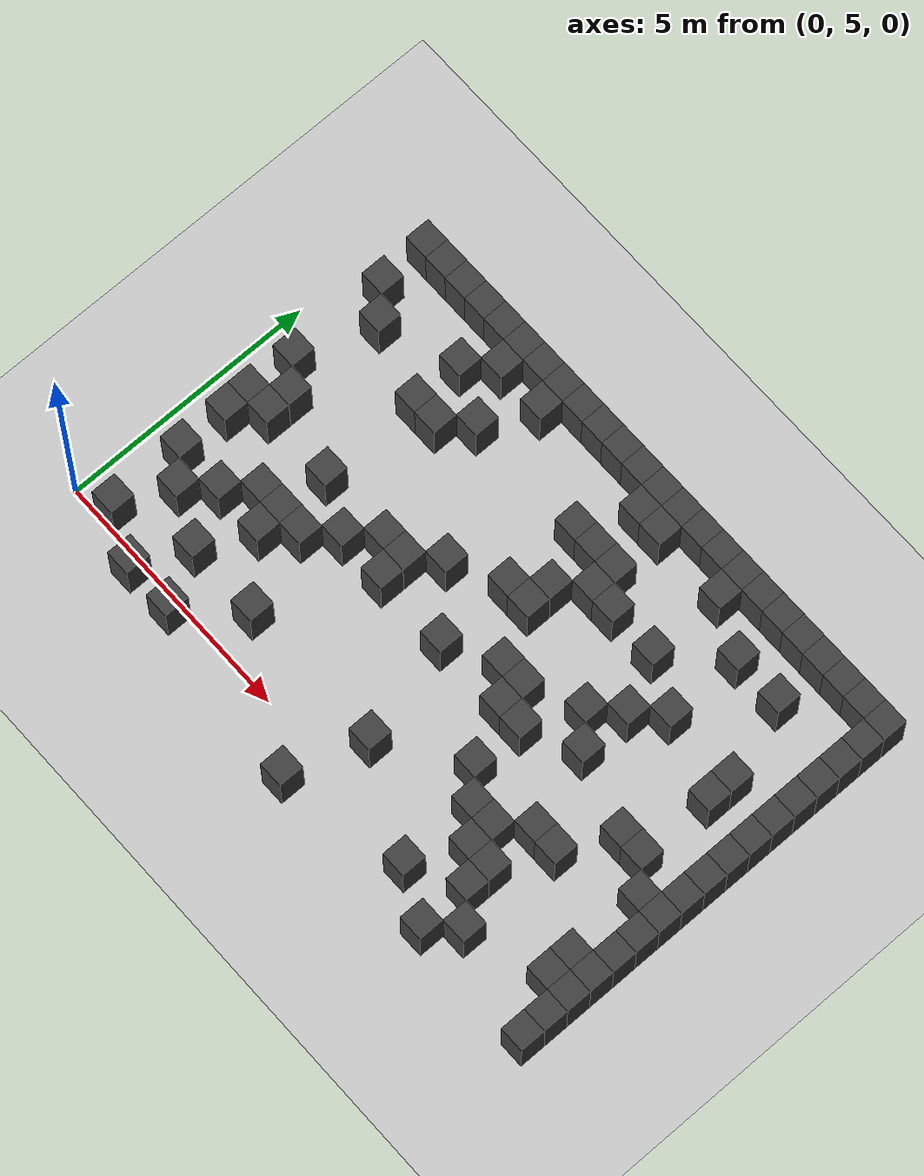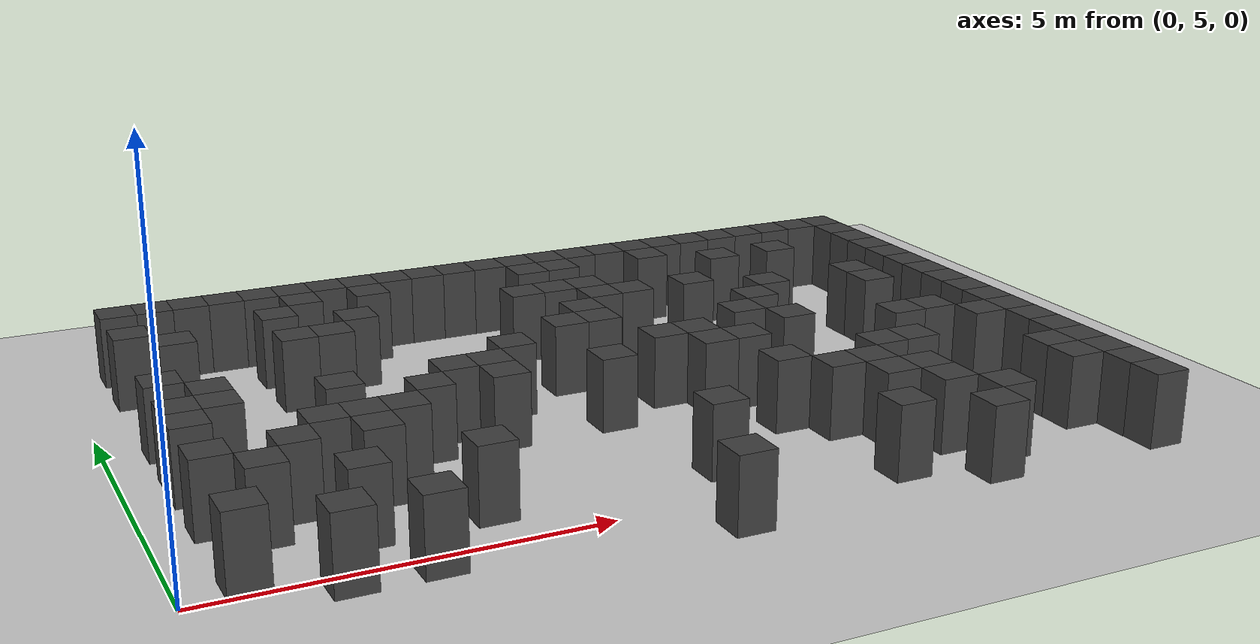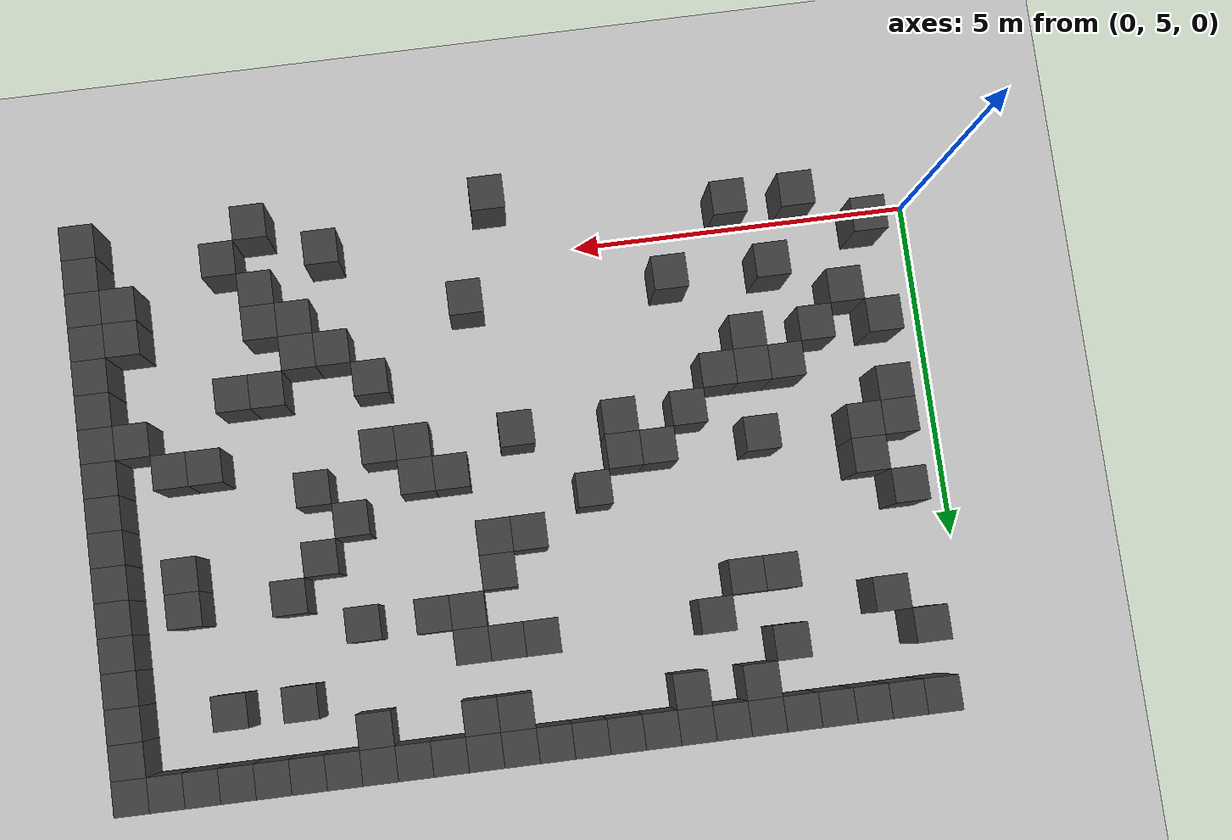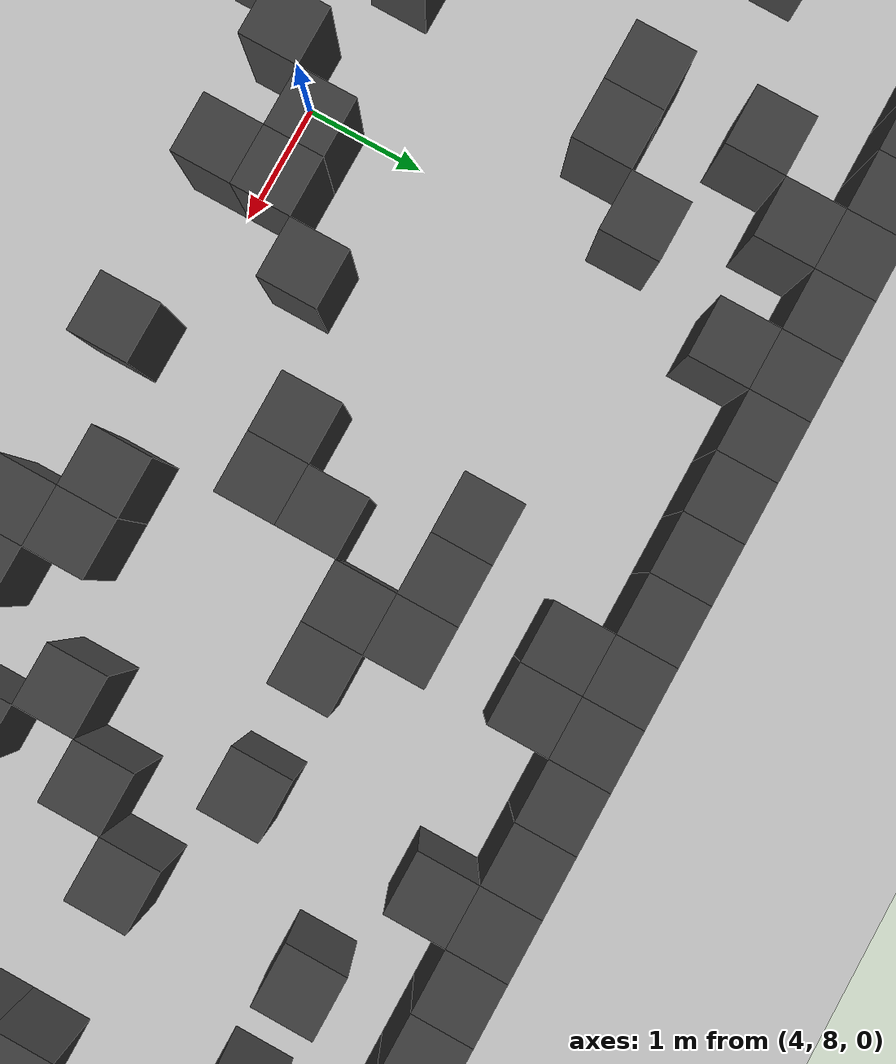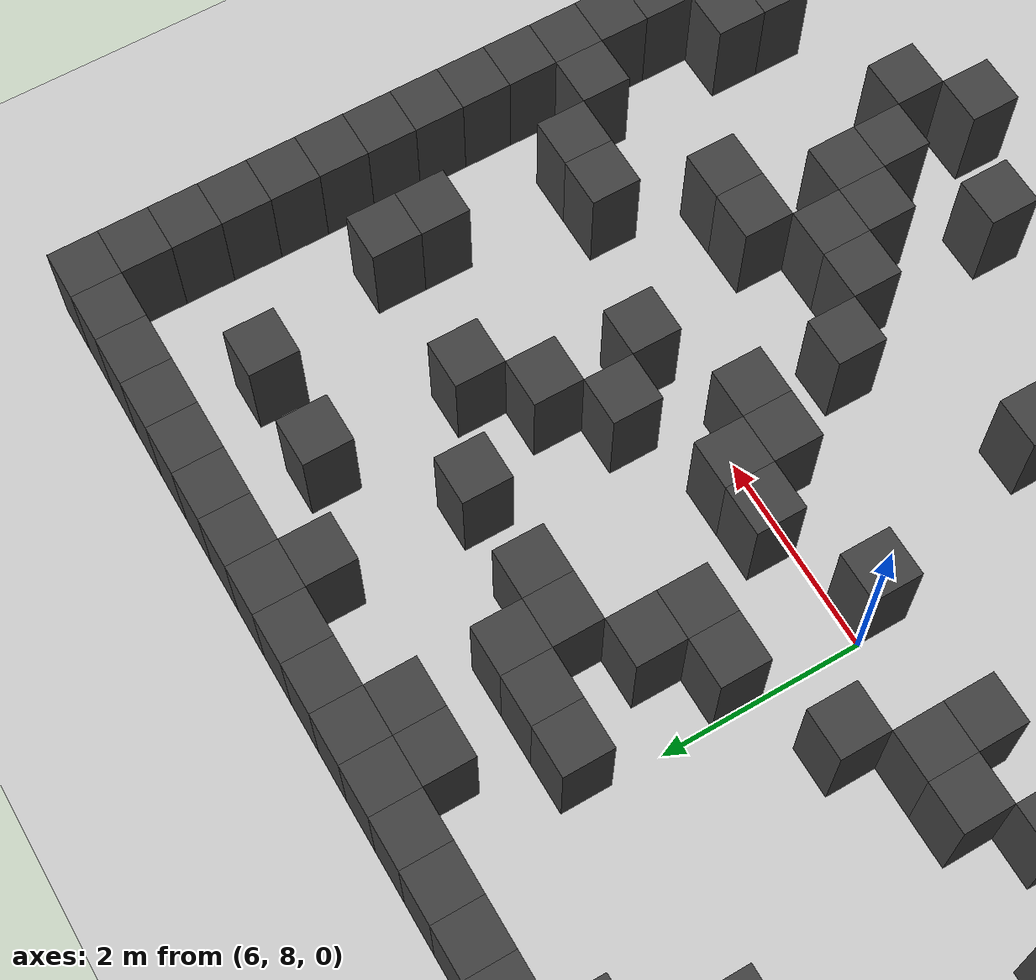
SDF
<sdf version="1.7">
 <world name="map_4390">
  <model name="ground_plane">
   <static>true</static>
   <link name="link">
    <collision name="collision">
     <geometry><plane><normal>0 0 1</normal><size>200 200</size></plane></geometry>
    </collision>
    <visual name="visual">
     <geometry><plane><normal>0 0 1</normal><size>200 200</size></plane></geometry>
     <material><ambient>0.8 0.8 0.8 1</ambient><diffuse>0.8 0.8 0.8 1</diffuse></material>
    </visual>
   </link>
  </model>
  <model name="maze_environment">
   <static>true</static>
   <link name="wall_26">
    <pose>0.750 12.250 0.500 0 0 0</pose>
    <collision name="col"><geometry><box><size>0.5 0.5 1.0</size></box></geometry></collision>
    <visual name="vis">
     <geometry><box><size>0.5 0.5 1.0</size></box></geometry>
     <material><ambient>0.15 0.15 0.15 1</ambient><diffuse>0.25 0.25 0.25 1</diffuse></material>
    </visual>
   </link>
   <link name="wall_27">
    <pose>1.250 12.250 0.500 0 0 0</pose>
    <collision name="col"><geometry><box><size>0.5 0.5 1.0</size></box></geometry></collision>
    <visual name="vis">
     <geometry><box><size>0.5 0.5 1.0</size></box></geometry>
     <material><ambient>0.15 0.15 0.15 1</ambient><diffuse>0.25 0.25 0.25 1</diffuse></material>
    </visual>
   </link>
   <link name="wall_28">
    <pose>1.750 12.250 0.500 0 0 0</pose>
    <collision name="col"><geometry><box><size>0.5 0.5 1.0</size></box></geometry></collision>
    <visual name="vis">
     <geometry><box><size>0.5 0.5 1.0</size></box></geometry>
     <material><ambient>0.15 0.15 0.15 1</ambient><diffuse>0.25 0.25 0.25 1</diffuse></material>
    </visual>
   </link>
   <link name="wall_29">
    <pose>2.250 12.250 0.500 0 0 0</pose>
    <collision name="col"><geometry><box><size>0.5 0.5 1.0</size></box></geometry></collision>
    <visual name="vis">
     <geometry><box><size>0.5 0.5 1.0</size></box></geometry>
     <material><ambient>0.15 0.15 0.15 1</ambient><diffuse>0.25 0.25 0.25 1</diffuse></material>
    </visual>
   </link>
   <link name="wall_30">
    <pose>2.750 12.250 0.500 0 0 0</pose>
    <collision name="col"><geometry><box><size>0.5 0.5 1.0</size></box></geometry></collision>
    <visual name="vis">
     <geometry><box><size>0.5 0.5 1.0</size></box></geometry>
     <material><ambient>0.15 0.15 0.15 1</ambient><diffuse>0.25 0.25 0.25 1</diffuse></material>
    </visual>
   </link>
   <link name="wall_31">
    <pose>3.250 12.250 0.500 0 0 0</pose>
    <collision name="col"><geometry><box><size>0.5 0.5 1.0</size></box></geometry></collision>
    <visual name="vis">
     <geometry><box><size>0.5 0.5 1.0</size></box></geometry>
     <material><ambient>0.15 0.15 0.15 1</ambient><diffuse>0.25 0.25 0.25 1</diffuse></material>
    </visual>
   </link>
   <link name="wall_32">
    <pose>3.750 12.250 0.500 0 0 0</pose>
    <collision name="col"><geometry><box><size>0.5 0.5 1.0</size></box></geometry></collision>
    <visual name="vis">
     <geometry><box><size>0.5 0.5 1.0</size></box></geometry>
     <material><ambient>0.15 0.15 0.15 1</ambient><diffuse>0.25 0.25 0.25 1</diffuse></material>
    </visual>
   </link>
   <link name="wall_33">
    <pose>4.250 12.250 0.500 0 0 0</pose>
    <collision name="col"><geometry><box><size>0.5 0.5 1.0</size></box></geometry></collision>
    <visual name="vis">
     <geometry><box><size>0.5 0.5 1.0</size></box></geometry>
     <material><ambient>0.15 0.15 0.15 1</ambient><diffuse>0.25 0.25 0.25 1</diffuse></material>
    </visual>
   </link>
   <link name="wall_34">
    <pose>4.750 12.250 0.500 0 0 0</pose>
    <collision name="col"><geometry><box><size>0.5 0.5 1.0</size></box></geometry></collision>
    <visual name="vis">
     <geometry><box><size>0.5 0.5 1.0</size></box></geometry>
     <material><ambient>0.15 0.15 0.15 1</ambient><diffuse>0.25 0.25 0.25 1</diffuse></material>
    </visual>
   </link>
   <link name="wall_35">
    <pose>5.250 12.250 0.500 0 0 0</pose>
    <collision name="col"><geometry><box><size>0.5 0.5 1.0</size></box></geometry></collision>
    <visual name="vis">
     <geometry><box><size>0.5 0.5 1.0</size></box></geometry>
     <material><ambient>0.15 0.15 0.15 1</ambient><diffuse>0.25 0.25 0.25 1</diffuse></material>
    </visual>
   </link>
   <link name="wall_36">
    <pose>5.750 12.250 0.500 0 0 0</pose>
    <collision name="col"><geometry><box><size>0.5 0.5 1.0</size></box></geometry></collision>
    <visual name="vis">
     <geometry><box><size>0.5 0.5 1.0</size></box></geometry>
     <material><ambient>0.15 0.15 0.15 1</ambient><diffuse>0.25 0.25 0.25 1</diffuse></material>
    </visual>
   </link>
   <link name="wall_37">
    <pose>6.250 12.250 0.500 0 0 0</pose>
    <collision name="col"><geometry><box><size>0.5 0.5 1.0</size></box></geometry></collision>
    <visual name="vis">
     <geometry><box><size>0.5 0.5 1.0</size></box></geometry>
     <material><ambient>0.15 0.15 0.15 1</ambient><diffuse>0.25 0.25 0.25 1</diffuse></material>
    </visual>
   </link>
   <link name="wall_38">
    <pose>6.750 12.250 0.500 0 0 0</pose>
    <collision name="col"><geometry><box><size>0.5 0.5 1.0</size></box></geometry></collision>
    <visual name="vis">
     <geometry><box><size>0.5 0.5 1.0</size></box></geometry>
     <material><ambient>0.15 0.15 0.15 1</ambient><diffuse>0.25 0.25 0.25 1</diffuse></material>
    </visual>
   </link>
   <link name="wall_39">
    <pose>7.250 12.250 0.500 0 0 0</pose>
    <collision name="col"><geometry><box><size>0.5 0.5 1.0</size></box></geometry></collision>
    <visual name="vis">
     <geometry><box><size>0.5 0.5 1.0</size></box></geometry>
     <material><ambient>0.15 0.15 0.15 1</ambient><diffuse>0.25 0.25 0.25 1</diffuse></material>
    </visual>
   </link>
   <link name="wall_40">
    <pose>7.750 12.250 0.500 0 0 0</pose>
    <collision name="col"><geometry><box><size>0.5 0.5 1.0</size></box></geometry></collision>
    <visual name="vis">
     <geometry><box><size>0.5 0.5 1.0</size></box></geometry>
     <material><ambient>0.15 0.15 0.15 1</ambient><diffuse>0.25 0.25 0.25 1</diffuse></material>
    </visual>
   </link>
   <link name="wall_41">
    <pose>8.250 12.250 0.500 0 0 0</pose>
    <collision name="col"><geometry><box><size>0.5 0.5 1.0</size></box></geometry></collision>
    <visual name="vis">
     <geometry><box><size>0.5 0.5 1.0</size></box></geometry>
     <material><ambient>0.15 0.15 0.15 1</ambient><diffuse>0.25 0.25 0.25 1</diffuse></material>
    </visual>
   </link>
   <link name="wall_42">
    <pose>8.750 12.250 0.500 0 0 0</pose>
    <collision name="col"><geometry><box><size>0.5 0.5 1.0</size></box></geometry></collision>
    <visual name="vis">
     <geometry><box><size>0.5 0.5 1.0</size></box></geometry>
     <material><ambient>0.15 0.15 0.15 1</ambient><diffuse>0.25 0.25 0.25 1</diffuse></material>
    </visual>
   </link>
   <link name="wall_43">
    <pose>9.250 12.250 0.500 0 0 0</pose>
    <collision name="col"><geometry><box><size>0.5 0.5 1.0</size></box></geometry></collision>
    <visual name="vis">
     <geometry><box><size>0.5 0.5 1.0</size></box></geometry>
     <material><ambient>0.15 0.15 0.15 1</ambient><diffuse>0.25 0.25 0.25 1</diffuse></material>
    </visual>
   </link>
   <link name="wall_44">
    <pose>9.750 12.250 0.500 0 0 0</pose>
    <collision name="col"><geometry><box><size>0.5 0.5 1.0</size></box></geometry></collision>
    <visual name="vis">
     <geometry><box><size>0.5 0.5 1.0</size></box></geometry>
     <material><ambient>0.15 0.15 0.15 1</ambient><diffuse>0.25 0.25 0.25 1</diffuse></material>
    </visual>
   </link>
   <link name="wall_45">
    <pose>10.250 12.250 0.500 0 0 0</pose>
    <collision name="col"><geometry><box><size>0.5 0.5 1.0</size></box></geometry></collision>
    <visual name="vis">
     <geometry><box><size>0.5 0.5 1.0</size></box></geometry>
     <material><ambient>0.15 0.15 0.15 1</ambient><diffuse>0.25 0.25 0.25 1</diffuse></material>
    </visual>
   </link>
   <link name="wall_46">
    <pose>10.750 12.250 0.500 0 0 0</pose>
    <collision name="col"><geometry><box><size>0.5 0.5 1.0</size></box></geometry></collision>
    <visual name="vis">
     <geometry><box><size>0.5 0.5 1.0</size></box></geometry>
     <material><ambient>0.15 0.15 0.15 1</ambient><diffuse>0.25 0.25 0.25 1</diffuse></material>
    </visual>
   </link>
   <link name="wall_47">
    <pose>11.250 12.250 0.500 0 0 0</pose>
    <collision name="col"><geometry><box><size>0.5 0.5 1.0</size></box></geometry></collision>
    <visual name="vis">
     <geometry><box><size>0.5 0.5 1.0</size></box></geometry>
     <material><ambient>0.15 0.15 0.15 1</ambient><diffuse>0.25 0.25 0.25 1</diffuse></material>
    </visual>
   </link>
   <link name="wall_48">
    <pose>11.750 12.250 0.500 0 0 0</pose>
    <collision name="col"><geometry><box><size>0.5 0.5 1.0</size></box></geometry></collision>
    <visual name="vis">
     <geometry><box><size>0.5 0.5 1.0</size></box></geometry>
     <material><ambient>0.15 0.15 0.15 1</ambient><diffuse>0.25 0.25 0.25 1</diffuse></material>
    </visual>
   </link>
   <link name="wall_49">
    <pose>12.250 12.250 0.500 0 0 0</pose>
    <collision name="col"><geometry><box><size>0.5 0.5 1.0</size></box></geometry></collision>
    <visual name="vis">
     <geometry><box><size>0.5 0.5 1.0</size></box></geometry>
     <material><ambient>0.15 0.15 0.15 1</ambient><diffuse>0.25 0.25 0.25 1</diffuse></material>
    </visual>
   </link>
   <link name="wall_58">
    <pose>3.250 11.750 0.500 0 0 0</pose>
    <collision name="col"><geometry><box><size>0.5 0.5 1.0</size></box></geometry></collision>
    <visual name="vis">
     <geometry><box><size>0.5 0.5 1.0</size></box></geometry>
     <material><ambient>0.15 0.15 0.15 1</ambient><diffuse>0.25 0.25 0.25 1</diffuse></material>
    </visual>
   </link>
   <link name="wall_59">
    <pose>4.250 11.750 0.500 0 0 0</pose>
    <collision name="col"><geometry><box><size>0.5 0.5 1.0</size></box></geometry></collision>
    <visual name="vis">
     <geometry><box><size>0.5 0.5 1.0</size></box></geometry>
     <material><ambient>0.15 0.15 0.15 1</ambient><diffuse>0.25 0.25 0.25 1</diffuse></material>
    </visual>
   </link>
   <link name="wall_60">
    <pose>6.750 11.750 0.500 0 0 0</pose>
    <collision name="col"><geometry><box><size>0.5 0.5 1.0</size></box></geometry></collision>
    <visual name="vis">
     <geometry><box><size>0.5 0.5 1.0</size></box></geometry>
     <material><ambient>0.15 0.15 0.15 1</ambient><diffuse>0.25 0.25 0.25 1</diffuse></material>
    </visual>
   </link>
   <link name="wall_61">
    <pose>7.250 11.750 0.500 0 0 0</pose>
    <collision name="col"><geometry><box><size>0.5 0.5 1.0</size></box></geometry></collision>
    <visual name="vis">
     <geometry><box><size>0.5 0.5 1.0</size></box></geometry>
     <material><ambient>0.15 0.15 0.15 1</ambient><diffuse>0.25 0.25 0.25 1</diffuse></material>
    </visual>
   </link>
   <link name="wall_62">
    <pose>8.750 11.750 0.500 0 0 0</pose>
    <collision name="col"><geometry><box><size>0.5 0.5 1.0</size></box></geometry></collision>
    <visual name="vis">
     <geometry><box><size>0.5 0.5 1.0</size></box></geometry>
     <material><ambient>0.15 0.15 0.15 1</ambient><diffuse>0.25 0.25 0.25 1</diffuse></material>
    </visual>
   </link>
   <link name="wall_63">
    <pose>12.250 11.750 0.500 0 0 0</pose>
    <collision name="col"><geometry><box><size>0.5 0.5 1.0</size></box></geometry></collision>
    <visual name="vis">
     <geometry><box><size>0.5 0.5 1.0</size></box></geometry>
     <material><ambient>0.15 0.15 0.15 1</ambient><diffuse>0.25 0.25 0.25 1</diffuse></material>
    </visual>
   </link>
   <link name="wall_68">
    <pose>0.750 11.250 0.500 0 0 0</pose>
    <collision name="col"><geometry><box><size>0.5 0.5 1.0</size></box></geometry></collision>
    <visual name="vis">
     <geometry><box><size>0.5 0.5 1.0</size></box></geometry>
     <material><ambient>0.15 0.15 0.15 1</ambient><diffuse>0.25 0.25 0.25 1</diffuse></material>
    </visual>
   </link>
   <link name="wall_69">
    <pose>2.750 11.250 0.500 0 0 0</pose>
    <collision name="col"><geometry><box><size>0.5 0.5 1.0</size></box></geometry></collision>
    <visual name="vis">
     <geometry><box><size>0.5 0.5 1.0</size></box></geometry>
     <material><ambient>0.15 0.15 0.15 1</ambient><diffuse>0.25 0.25 0.25 1</diffuse></material>
    </visual>
   </link>
   <link name="wall_70">
    <pose>9.750 11.250 0.500 0 0 0</pose>
    <collision name="col"><geometry><box><size>0.5 0.5 1.0</size></box></geometry></collision>
    <visual name="vis">
     <geometry><box><size>0.5 0.5 1.0</size></box></geometry>
     <material><ambient>0.15 0.15 0.15 1</ambient><diffuse>0.25 0.25 0.25 1</diffuse></material>
    </visual>
   </link>
   <link name="wall_71">
    <pose>10.750 11.250 0.500 0 0 0</pose>
    <collision name="col"><geometry><box><size>0.5 0.5 1.0</size></box></geometry></collision>
    <visual name="vis">
     <geometry><box><size>0.5 0.5 1.0</size></box></geometry>
     <material><ambient>0.15 0.15 0.15 1</ambient><diffuse>0.25 0.25 0.25 1</diffuse></material>
    </visual>
   </link>
   <link name="wall_72">
    <pose>12.250 11.250 0.500 0 0 0</pose>
    <collision name="col"><geometry><box><size>0.5 0.5 1.0</size></box></geometry></collision>
    <visual name="vis">
     <geometry><box><size>0.5 0.5 1.0</size></box></geometry>
     <material><ambient>0.15 0.15 0.15 1</ambient><diffuse>0.25 0.25 0.25 1</diffuse></material>
    </visual>
   </link>
   <link name="wall_78">
    <pose>1.250 10.750 0.500 0 0 0</pose>
    <collision name="col"><geometry><box><size>0.5 0.5 1.0</size></box></geometry></collision>
    <visual name="vis">
     <geometry><box><size>0.5 0.5 1.0</size></box></geometry>
     <material><ambient>0.15 0.15 0.15 1</ambient><diffuse>0.25 0.25 0.25 1</diffuse></material>
    </visual>
   </link>
   <link name="wall_79">
    <pose>3.750 10.750 0.500 0 0 0</pose>
    <collision name="col"><geometry><box><size>0.5 0.5 1.0</size></box></geometry></collision>
    <visual name="vis">
     <geometry><box><size>0.5 0.5 1.0</size></box></geometry>
     <material><ambient>0.15 0.15 0.15 1</ambient><diffuse>0.25 0.25 0.25 1</diffuse></material>
    </visual>
   </link>
   <link name="wall_80">
    <pose>6.250 10.750 0.500 0 0 0</pose>
    <collision name="col"><geometry><box><size>0.5 0.5 1.0</size></box></geometry></collision>
    <visual name="vis">
     <geometry><box><size>0.5 0.5 1.0</size></box></geometry>
     <material><ambient>0.15 0.15 0.15 1</ambient><diffuse>0.25 0.25 0.25 1</diffuse></material>
    </visual>
   </link>
   <link name="wall_81">
    <pose>6.750 10.750 0.500 0 0 0</pose>
    <collision name="col"><geometry><box><size>0.5 0.5 1.0</size></box></geometry></collision>
    <visual name="vis">
     <geometry><box><size>0.5 0.5 1.0</size></box></geometry>
     <material><ambient>0.15 0.15 0.15 1</ambient><diffuse>0.25 0.25 0.25 1</diffuse></material>
    </visual>
   </link>
   <link name="wall_82">
    <pose>7.250 10.750 0.500 0 0 0</pose>
    <collision name="col"><geometry><box><size>0.5 0.5 1.0</size></box></geometry></collision>
    <visual name="vis">
     <geometry><box><size>0.5 0.5 1.0</size></box></geometry>
     <material><ambient>0.15 0.15 0.15 1</ambient><diffuse>0.25 0.25 0.25 1</diffuse></material>
    </visual>
   </link>
   <link name="wall_83">
    <pose>12.250 10.750 0.500 0 0 0</pose>
    <collision name="col"><geometry><box><size>0.5 0.5 1.0</size></box></geometry></collision>
    <visual name="vis">
     <geometry><box><size>0.5 0.5 1.0</size></box></geometry>
     <material><ambient>0.15 0.15 0.15 1</ambient><diffuse>0.25 0.25 0.25 1</diffuse></material>
    </visual>
   </link>
   <link name="wall_91">
    <pose>2.750 10.250 0.500 0 0 0</pose>
    <collision name="col"><geometry><box><size>0.5 0.5 1.0</size></box></geometry></collision>
    <visual name="vis">
     <geometry><box><size>0.5 0.5 1.0</size></box></geometry>
     <material><ambient>0.15 0.15 0.15 1</ambient><diffuse>0.25 0.25 0.25 1</diffuse></material>
    </visual>
   </link>
   <link name="wall_92">
    <pose>3.250 10.250 0.500 0 0 0</pose>
    <collision name="col"><geometry><box><size>0.5 0.5 1.0</size></box></geometry></collision>
    <visual name="vis">
     <geometry><box><size>0.5 0.5 1.0</size></box></geometry>
     <material><ambient>0.15 0.15 0.15 1</ambient><diffuse>0.25 0.25 0.25 1</diffuse></material>
    </visual>
   </link>
   <link name="wall_93">
    <pose>7.250 10.250 0.500 0 0 0</pose>
    <collision name="col"><geometry><box><size>0.5 0.5 1.0</size></box></geometry></collision>
    <visual name="vis">
     <geometry><box><size>0.5 0.5 1.0</size></box></geometry>
     <material><ambient>0.15 0.15 0.15 1</ambient><diffuse>0.25 0.25 0.25 1</diffuse></material>
    </visual>
   </link>
   <link name="wall_94">
    <pose>7.750 10.250 0.500 0 0 0</pose>
    <collision name="col"><geometry><box><size>0.5 0.5 1.0</size></box></geometry></collision>
    <visual name="vis">
     <geometry><box><size>0.5 0.5 1.0</size></box></geometry>
     <material><ambient>0.15 0.15 0.15 1</ambient><diffuse>0.25 0.25 0.25 1</diffuse></material>
    </visual>
   </link>
   <link name="wall_95">
    <pose>8.750 10.250 0.500 0 0 0</pose>
    <collision name="col"><geometry><box><size>0.5 0.5 1.0</size></box></geometry></collision>
    <visual name="vis">
     <geometry><box><size>0.5 0.5 1.0</size></box></geometry>
     <material><ambient>0.15 0.15 0.15 1</ambient><diffuse>0.25 0.25 0.25 1</diffuse></material>
    </visual>
   </link>
   <link name="wall_96">
    <pose>12.250 10.250 0.500 0 0 0</pose>
    <collision name="col"><geometry><box><size>0.5 0.5 1.0</size></box></geometry></collision>
    <visual name="vis">
     <geometry><box><size>0.5 0.5 1.0</size></box></geometry>
     <material><ambient>0.15 0.15 0.15 1</ambient><diffuse>0.25 0.25 0.25 1</diffuse></material>
    </visual>
   </link>
   <link name="wall_101">
    <pose>6.750 9.750 0.500 0 0 0</pose>
    <collision name="col"><geometry><box><size>0.5 0.5 1.0</size></box></geometry></collision>
    <visual name="vis">
     <geometry><box><size>0.5 0.5 1.0</size></box></geometry>
     <material><ambient>0.15 0.15 0.15 1</ambient><diffuse>0.25 0.25 0.25 1</diffuse></material>
    </visual>
   </link>
   <link name="wall_102">
    <pose>9.750 9.750 0.500 0 0 0</pose>
    <collision name="col"><geometry><box><size>0.5 0.5 1.0</size></box></geometry></collision>
    <visual name="vis">
     <geometry><box><size>0.5 0.5 1.0</size></box></geometry>
     <material><ambient>0.15 0.15 0.15 1</ambient><diffuse>0.25 0.25 0.25 1</diffuse></material>
    </visual>
   </link>
   <link name="wall_103">
    <pose>11.250 9.750 0.500 0 0 0</pose>
    <collision name="col"><geometry><box><size>0.5 0.5 1.0</size></box></geometry></collision>
    <visual name="vis">
     <geometry><box><size>0.5 0.5 1.0</size></box></geometry>
     <material><ambient>0.15 0.15 0.15 1</ambient><diffuse>0.25 0.25 0.25 1</diffuse></material>
    </visual>
   </link>
   <link name="wall_104">
    <pose>12.250 9.750 0.500 0 0 0</pose>
    <collision name="col"><geometry><box><size>0.5 0.5 1.0</size></box></geometry></collision>
    <visual name="vis">
     <geometry><box><size>0.5 0.5 1.0</size></box></geometry>
     <material><ambient>0.15 0.15 0.15 1</ambient><diffuse>0.25 0.25 0.25 1</diffuse></material>
    </visual>
   </link>
   <link name="wall_111">
    <pose>0.750 9.250 0.500 0 0 0</pose>
    <collision name="col"><geometry><box><size>0.5 0.5 1.0</size></box></geometry></collision>
    <visual name="vis">
     <geometry><box><size>0.5 0.5 1.0</size></box></geometry>
     <material><ambient>0.15 0.15 0.15 1</ambient><diffuse>0.25 0.25 0.25 1</diffuse></material>
    </visual>
   </link>
   <link name="wall_112">
    <pose>6.250 9.250 0.500 0 0 0</pose>
    <collision name="col"><geometry><box><size>0.5 0.5 1.0</size></box></geometry></collision>
    <visual name="vis">
     <geometry><box><size>0.5 0.5 1.0</size></box></geometry>
     <material><ambient>0.15 0.15 0.15 1</ambient><diffuse>0.25 0.25 0.25 1</diffuse></material>
    </visual>
   </link>
   <link name="wall_113">
    <pose>6.750 9.250 0.500 0 0 0</pose>
    <collision name="col"><geometry><box><size>0.5 0.5 1.0</size></box></geometry></collision>
    <visual name="vis">
     <geometry><box><size>0.5 0.5 1.0</size></box></geometry>
     <material><ambient>0.15 0.15 0.15 1</ambient><diffuse>0.25 0.25 0.25 1</diffuse></material>
    </visual>
   </link>
   <link name="wall_114">
    <pose>9.250 9.250 0.500 0 0 0</pose>
    <collision name="col"><geometry><box><size>0.5 0.5 1.0</size></box></geometry></collision>
    <visual name="vis">
     <geometry><box><size>0.5 0.5 1.0</size></box></geometry>
     <material><ambient>0.15 0.15 0.15 1</ambient><diffuse>0.25 0.25 0.25 1</diffuse></material>
    </visual>
   </link>
   <link name="wall_115">
    <pose>11.250 9.250 0.500 0 0 0</pose>
    <collision name="col"><geometry><box><size>0.5 0.5 1.0</size></box></geometry></collision>
    <visual name="vis">
     <geometry><box><size>0.5 0.5 1.0</size></box></geometry>
     <material><ambient>0.15 0.15 0.15 1</ambient><diffuse>0.25 0.25 0.25 1</diffuse></material>
    </visual>
   </link>
   <link name="wall_116">
    <pose>12.250 9.250 0.500 0 0 0</pose>
    <collision name="col"><geometry><box><size>0.5 0.5 1.0</size></box></geometry></collision>
    <visual name="vis">
     <geometry><box><size>0.5 0.5 1.0</size></box></geometry>
     <material><ambient>0.15 0.15 0.15 1</ambient><diffuse>0.25 0.25 0.25 1</diffuse></material>
    </visual>
   </link>
   <link name="wall_122">
    <pose>1.250 8.750 0.500 0 0 0</pose>
    <collision name="col"><geometry><box><size>0.5 0.5 1.0</size></box></geometry></collision>
    <visual name="vis">
     <geometry><box><size>0.5 0.5 1.0</size></box></geometry>
     <material><ambient>0.15 0.15 0.15 1</ambient><diffuse>0.25 0.25 0.25 1</diffuse></material>
    </visual>
   </link>
   <link name="wall_123">
    <pose>5.250 8.750 0.500 0 0 0</pose>
    <collision name="col"><geometry><box><size>0.5 0.5 1.0</size></box></geometry></collision>
    <visual name="vis">
     <geometry><box><size>0.5 0.5 1.0</size></box></geometry>
     <material><ambient>0.15 0.15 0.15 1</ambient><diffuse>0.25 0.25 0.25 1</diffuse></material>
    </visual>
   </link>
   <link name="wall_124">
    <pose>8.750 8.750 0.500 0 0 0</pose>
    <collision name="col"><geometry><box><size>0.5 0.5 1.0</size></box></geometry></collision>
    <visual name="vis">
     <geometry><box><size>0.5 0.5 1.0</size></box></geometry>
     <material><ambient>0.15 0.15 0.15 1</ambient><diffuse>0.25 0.25 0.25 1</diffuse></material>
    </visual>
   </link>
   <link name="wall_125">
    <pose>12.250 8.750 0.500 0 0 0</pose>
    <collision name="col"><geometry><box><size>0.5 0.5 1.0</size></box></geometry></collision>
    <visual name="vis">
     <geometry><box><size>0.5 0.5 1.0</size></box></geometry>
     <material><ambient>0.15 0.15 0.15 1</ambient><diffuse>0.25 0.25 0.25 1</diffuse></material>
    </visual>
   </link>
   <link name="wall_134">
    <pose>0.750 8.250 0.500 0 0 0</pose>
    <collision name="col"><geometry><box><size>0.5 0.5 1.0</size></box></geometry></collision>
    <visual name="vis">
     <geometry><box><size>0.5 0.5 1.0</size></box></geometry>
     <material><ambient>0.15 0.15 0.15 1</ambient><diffuse>0.25 0.25 0.25 1</diffuse></material>
    </visual>
   </link>
   <link name="wall_135">
    <pose>1.250 8.250 0.500 0 0 0</pose>
    <collision name="col"><geometry><box><size>0.5 0.5 1.0</size></box></geometry></collision>
    <visual name="vis">
     <geometry><box><size>0.5 0.5 1.0</size></box></geometry>
     <material><ambient>0.15 0.15 0.15 1</ambient><diffuse>0.25 0.25 0.25 1</diffuse></material>
    </visual>
   </link>
   <link name="wall_136">
    <pose>2.750 8.250 0.500 0 0 0</pose>
    <collision name="col"><geometry><box><size>0.5 0.5 1.0</size></box></geometry></collision>
    <visual name="vis">
     <geometry><box><size>0.5 0.5 1.0</size></box></geometry>
     <material><ambient>0.15 0.15 0.15 1</ambient><diffuse>0.25 0.25 0.25 1</diffuse></material>
    </visual>
   </link>
   <link name="wall_137">
    <pose>4.250 8.250 0.500 0 0 0</pose>
    <collision name="col"><geometry><box><size>0.5 0.5 1.0</size></box></geometry></collision>
    <visual name="vis">
     <geometry><box><size>0.5 0.5 1.0</size></box></geometry>
     <material><ambient>0.15 0.15 0.15 1</ambient><diffuse>0.25 0.25 0.25 1</diffuse></material>
    </visual>
   </link>
   <link name="wall_138">
    <pose>4.750 8.250 0.500 0 0 0</pose>
    <collision name="col"><geometry><box><size>0.5 0.5 1.0</size></box></geometry></collision>
    <visual name="vis">
     <geometry><box><size>0.5 0.5 1.0</size></box></geometry>
     <material><ambient>0.15 0.15 0.15 1</ambient><diffuse>0.25 0.25 0.25 1</diffuse></material>
    </visual>
   </link>
   <link name="wall_139">
    <pose>7.250 8.250 0.500 0 0 0</pose>
    <collision name="col"><geometry><box><size>0.5 0.5 1.0</size></box></geometry></collision>
    <visual name="vis">
     <geometry><box><size>0.5 0.5 1.0</size></box></geometry>
     <material><ambient>0.15 0.15 0.15 1</ambient><diffuse>0.25 0.25 0.25 1</diffuse></material>
    </visual>
   </link>
   <link name="wall_140">
    <pose>7.750 8.250 0.500 0 0 0</pose>
    <collision name="col"><geometry><box><size>0.5 0.5 1.0</size></box></geometry></collision>
    <visual name="vis">
     <geometry><box><size>0.5 0.5 1.0</size></box></geometry>
     <material><ambient>0.15 0.15 0.15 1</ambient><diffuse>0.25 0.25 0.25 1</diffuse></material>
    </visual>
   </link>
   <link name="wall_141">
    <pose>9.250 8.250 0.500 0 0 0</pose>
    <collision name="col"><geometry><box><size>0.5 0.5 1.0</size></box></geometry></collision>
    <visual name="vis">
     <geometry><box><size>0.5 0.5 1.0</size></box></geometry>
     <material><ambient>0.15 0.15 0.15 1</ambient><diffuse>0.25 0.25 0.25 1</diffuse></material>
    </visual>
   </link>
   <link name="wall_142">
    <pose>12.250 8.250 0.500 0 0 0</pose>
    <collision name="col"><geometry><box><size>0.5 0.5 1.0</size></box></geometry></collision>
    <visual name="vis">
     <geometry><box><size>0.5 0.5 1.0</size></box></geometry>
     <material><ambient>0.15 0.15 0.15 1</ambient><diffuse>0.25 0.25 0.25 1</diffuse></material>
    </visual>
   </link>
   <link name="wall_147">
    <pose>0.750 7.750 0.500 0 0 0</pose>
    <collision name="col"><geometry><box><size>0.5 0.5 1.0</size></box></geometry></collision>
    <visual name="vis">
     <geometry><box><size>0.5 0.5 1.0</size></box></geometry>
     <material><ambient>0.15 0.15 0.15 1</ambient><diffuse>0.25 0.25 0.25 1</diffuse></material>
    </visual>
   </link>
   <link name="wall_148">
    <pose>3.750 7.750 0.500 0 0 0</pose>
    <collision name="col"><geometry><box><size>0.5 0.5 1.0</size></box></geometry></collision>
    <visual name="vis">
     <geometry><box><size>0.5 0.5 1.0</size></box></geometry>
     <material><ambient>0.15 0.15 0.15 1</ambient><diffuse>0.25 0.25 0.25 1</diffuse></material>
    </visual>
   </link>
   <link name="wall_149">
    <pose>4.750 7.750 0.500 0 0 0</pose>
    <collision name="col"><geometry><box><size>0.5 0.5 1.0</size></box></geometry></collision>
    <visual name="vis">
     <geometry><box><size>0.5 0.5 1.0</size></box></geometry>
     <material><ambient>0.15 0.15 0.15 1</ambient><diffuse>0.25 0.25 0.25 1</diffuse></material>
    </visual>
   </link>
   <link name="wall_150">
    <pose>6.250 7.750 0.500 0 0 0</pose>
    <collision name="col"><geometry><box><size>0.5 0.5 1.0</size></box></geometry></collision>
    <visual name="vis">
     <geometry><box><size>0.5 0.5 1.0</size></box></geometry>
     <material><ambient>0.15 0.15 0.15 1</ambient><diffuse>0.25 0.25 0.25 1</diffuse></material>
    </visual>
   </link>
   <link name="wall_151">
    <pose>7.750 7.750 0.500 0 0 0</pose>
    <collision name="col"><geometry><box><size>0.5 0.5 1.0</size></box></geometry></collision>
    <visual name="vis">
     <geometry><box><size>0.5 0.5 1.0</size></box></geometry>
     <material><ambient>0.15 0.15 0.15 1</ambient><diffuse>0.25 0.25 0.25 1</diffuse></material>
    </visual>
   </link>
   <link name="wall_152">
    <pose>8.250 7.750 0.500 0 0 0</pose>
    <collision name="col"><geometry><box><size>0.5 0.5 1.0</size></box></geometry></collision>
    <visual name="vis">
     <geometry><box><size>0.5 0.5 1.0</size></box></geometry>
     <material><ambient>0.15 0.15 0.15 1</ambient><diffuse>0.25 0.25 0.25 1</diffuse></material>
    </visual>
   </link>
   <link name="wall_153">
    <pose>10.750 7.750 0.500 0 0 0</pose>
    <collision name="col"><geometry><box><size>0.5 0.5 1.0</size></box></geometry></collision>
    <visual name="vis">
     <geometry><box><size>0.5 0.5 1.0</size></box></geometry>
     <material><ambient>0.15 0.15 0.15 1</ambient><diffuse>0.25 0.25 0.25 1</diffuse></material>
    </visual>
   </link>
   <link name="wall_154">
    <pose>11.250 7.750 0.500 0 0 0</pose>
    <collision name="col"><geometry><box><size>0.5 0.5 1.0</size></box></geometry></collision>
    <visual name="vis">
     <geometry><box><size>0.5 0.5 1.0</size></box></geometry>
     <material><ambient>0.15 0.15 0.15 1</ambient><diffuse>0.25 0.25 0.25 1</diffuse></material>
    </visual>
   </link>
   <link name="wall_155">
    <pose>12.250 7.750 0.500 0 0 0</pose>
    <collision name="col"><geometry><box><size>0.5 0.5 1.0</size></box></geometry></collision>
    <visual name="vis">
     <geometry><box><size>0.5 0.5 1.0</size></box></geometry>
     <material><ambient>0.15 0.15 0.15 1</ambient><diffuse>0.25 0.25 0.25 1</diffuse></material>
    </visual>
   </link>
   <link name="wall_160">
    <pose>2.250 7.250 0.500 0 0 0</pose>
    <collision name="col"><geometry><box><size>0.5 0.5 1.0</size></box></geometry></collision>
    <visual name="vis">
     <geometry><box><size>0.5 0.5 1.0</size></box></geometry>
     <material><ambient>0.15 0.15 0.15 1</ambient><diffuse>0.25 0.25 0.25 1</diffuse></material>
    </visual>
   </link>
   <link name="wall_161">
    <pose>2.750 7.250 0.500 0 0 0</pose>
    <collision name="col"><geometry><box><size>0.5 0.5 1.0</size></box></geometry></collision>
    <visual name="vis">
     <geometry><box><size>0.5 0.5 1.0</size></box></geometry>
     <material><ambient>0.15 0.15 0.15 1</ambient><diffuse>0.25 0.25 0.25 1</diffuse></material>
    </visual>
   </link>
   <link name="wall_162">
    <pose>3.250 7.250 0.500 0 0 0</pose>
    <collision name="col"><geometry><box><size>0.5 0.5 1.0</size></box></geometry></collision>
    <visual name="vis">
     <geometry><box><size>0.5 0.5 1.0</size></box></geometry>
     <material><ambient>0.15 0.15 0.15 1</ambient><diffuse>0.25 0.25 0.25 1</diffuse></material>
    </visual>
   </link>
   <link name="wall_163">
    <pose>11.750 7.250 0.500 0 0 0</pose>
    <collision name="col"><geometry><box><size>0.5 0.5 1.0</size></box></geometry></collision>
    <visual name="vis">
     <geometry><box><size>0.5 0.5 1.0</size></box></geometry>
     <material><ambient>0.15 0.15 0.15 1</ambient><diffuse>0.25 0.25 0.25 1</diffuse></material>
    </visual>
   </link>
   <link name="wall_164">
    <pose>12.250 7.250 0.500 0 0 0</pose>
    <collision name="col"><geometry><box><size>0.5 0.5 1.0</size></box></geometry></collision>
    <visual name="vis">
     <geometry><box><size>0.5 0.5 1.0</size></box></geometry>
     <material><ambient>0.15 0.15 0.15 1</ambient><diffuse>0.25 0.25 0.25 1</diffuse></material>
    </visual>
   </link>
   <link name="wall_168">
    <pose>0.750 6.750 0.500 0 0 0</pose>
    <collision name="col"><geometry><box><size>0.5 0.5 1.0</size></box></geometry></collision>
    <visual name="vis">
     <geometry><box><size>0.5 0.5 1.0</size></box></geometry>
     <material><ambient>0.15 0.15 0.15 1</ambient><diffuse>0.25 0.25 0.25 1</diffuse></material>
    </visual>
   </link>
   <link name="wall_169">
    <pose>1.750 6.750 0.500 0 0 0</pose>
    <collision name="col"><geometry><box><size>0.5 0.5 1.0</size></box></geometry></collision>
    <visual name="vis">
     <geometry><box><size>0.5 0.5 1.0</size></box></geometry>
     <material><ambient>0.15 0.15 0.15 1</ambient><diffuse>0.25 0.25 0.25 1</diffuse></material>
    </visual>
   </link>
   <link name="wall_170">
    <pose>2.750 6.750 0.500 0 0 0</pose>
    <collision name="col"><geometry><box><size>0.5 0.5 1.0</size></box></geometry></collision>
    <visual name="vis">
     <geometry><box><size>0.5 0.5 1.0</size></box></geometry>
     <material><ambient>0.15 0.15 0.15 1</ambient><diffuse>0.25 0.25 0.25 1</diffuse></material>
    </visual>
   </link>
   <link name="wall_171">
    <pose>8.250 6.750 0.500 0 0 0</pose>
    <collision name="col"><geometry><box><size>0.5 0.5 1.0</size></box></geometry></collision>
    <visual name="vis">
     <geometry><box><size>0.5 0.5 1.0</size></box></geometry>
     <material><ambient>0.15 0.15 0.15 1</ambient><diffuse>0.25 0.25 0.25 1</diffuse></material>
    </visual>
   </link>
   <link name="wall_172">
    <pose>9.750 6.750 0.500 0 0 0</pose>
    <collision name="col"><geometry><box><size>0.5 0.5 1.0</size></box></geometry></collision>
    <visual name="vis">
     <geometry><box><size>0.5 0.5 1.0</size></box></geometry>
     <material><ambient>0.15 0.15 0.15 1</ambient><diffuse>0.25 0.25 0.25 1</diffuse></material>
    </visual>
   </link>
   <link name="wall_173">
    <pose>10.250 6.750 0.500 0 0 0</pose>
    <collision name="col"><geometry><box><size>0.5 0.5 1.0</size></box></geometry></collision>
    <visual name="vis">
     <geometry><box><size>0.5 0.5 1.0</size></box></geometry>
     <material><ambient>0.15 0.15 0.15 1</ambient><diffuse>0.25 0.25 0.25 1</diffuse></material>
    </visual>
   </link>
   <link name="wall_174">
    <pose>12.250 6.750 0.500 0 0 0</pose>
    <collision name="col"><geometry><box><size>0.5 0.5 1.0</size></box></geometry></collision>
    <visual name="vis">
     <geometry><box><size>0.5 0.5 1.0</size></box></geometry>
     <material><ambient>0.15 0.15 0.15 1</ambient><diffuse>0.25 0.25 0.25 1</diffuse></material>
    </visual>
   </link>
   <link name="wall_181">
    <pose>1.250 6.250 0.500 0 0 0</pose>
    <collision name="col"><geometry><box><size>0.5 0.5 1.0</size></box></geometry></collision>
    <visual name="vis">
     <geometry><box><size>0.5 0.5 1.0</size></box></geometry>
     <material><ambient>0.15 0.15 0.15 1</ambient><diffuse>0.25 0.25 0.25 1</diffuse></material>
    </visual>
   </link>
   <link name="wall_182">
    <pose>8.750 6.250 0.500 0 0 0</pose>
    <collision name="col"><geometry><box><size>0.5 0.5 1.0</size></box></geometry></collision>
    <visual name="vis">
     <geometry><box><size>0.5 0.5 1.0</size></box></geometry>
     <material><ambient>0.15 0.15 0.15 1</ambient><diffuse>0.25 0.25 0.25 1</diffuse></material>
    </visual>
   </link>
   <link name="wall_183">
    <pose>9.250 6.250 0.500 0 0 0</pose>
    <collision name="col"><geometry><box><size>0.5 0.5 1.0</size></box></geometry></collision>
    <visual name="vis">
     <geometry><box><size>0.5 0.5 1.0</size></box></geometry>
     <material><ambient>0.15 0.15 0.15 1</ambient><diffuse>0.25 0.25 0.25 1</diffuse></material>
    </visual>
   </link>
   <link name="wall_184">
    <pose>12.250 6.250 0.500 0 0 0</pose>
    <collision name="col"><geometry><box><size>0.5 0.5 1.0</size></box></geometry></collision>
    <visual name="vis">
     <geometry><box><size>0.5 0.5 1.0</size></box></geometry>
     <material><ambient>0.15 0.15 0.15 1</ambient><diffuse>0.25 0.25 0.25 1</diffuse></material>
    </visual>
   </link>
   <link name="wall_191">
    <pose>2.250 5.750 0.500 0 0 0</pose>
    <collision name="col"><geometry><box><size>0.5 0.5 1.0</size></box></geometry></collision>
    <visual name="vis">
     <geometry><box><size>0.5 0.5 1.0</size></box></geometry>
     <material><ambient>0.15 0.15 0.15 1</ambient><diffuse>0.25 0.25 0.25 1</diffuse></material>
    </visual>
   </link>
   <link name="wall_192">
    <pose>3.750 5.750 0.500 0 0 0</pose>
    <collision name="col"><geometry><box><size>0.5 0.5 1.0</size></box></geometry></collision>
    <visual name="vis">
     <geometry><box><size>0.5 0.5 1.0</size></box></geometry>
     <material><ambient>0.15 0.15 0.15 1</ambient><diffuse>0.25 0.25 0.25 1</diffuse></material>
    </visual>
   </link>
   <link name="wall_193">
    <pose>6.750 5.750 0.500 0 0 0</pose>
    <collision name="col"><geometry><box><size>0.5 0.5 1.0</size></box></geometry></collision>
    <visual name="vis">
     <geometry><box><size>0.5 0.5 1.0</size></box></geometry>
     <material><ambient>0.15 0.15 0.15 1</ambient><diffuse>0.25 0.25 0.25 1</diffuse></material>
    </visual>
   </link>
   <link name="wall_194">
    <pose>9.250 5.750 0.500 0 0 0</pose>
    <collision name="col"><geometry><box><size>0.5 0.5 1.0</size></box></geometry></collision>
    <visual name="vis">
     <geometry><box><size>0.5 0.5 1.0</size></box></geometry>
     <material><ambient>0.15 0.15 0.15 1</ambient><diffuse>0.25 0.25 0.25 1</diffuse></material>
    </visual>
   </link>
   <link name="wall_195">
    <pose>9.750 5.750 0.500 0 0 0</pose>
    <collision name="col"><geometry><box><size>0.5 0.5 1.0</size></box></geometry></collision>
    <visual name="vis">
     <geometry><box><size>0.5 0.5 1.0</size></box></geometry>
     <material><ambient>0.15 0.15 0.15 1</ambient><diffuse>0.25 0.25 0.25 1</diffuse></material>
    </visual>
   </link>
   <link name="wall_196">
    <pose>11.750 5.750 0.500 0 0 0</pose>
    <collision name="col"><geometry><box><size>0.5 0.5 1.0</size></box></geometry></collision>
    <visual name="vis">
     <geometry><box><size>0.5 0.5 1.0</size></box></geometry>
     <material><ambient>0.15 0.15 0.15 1</ambient><diffuse>0.25 0.25 0.25 1</diffuse></material>
    </visual>
   </link>
   <link name="wall_197">
    <pose>12.250 5.750 0.500 0 0 0</pose>
    <collision name="col"><geometry><box><size>0.5 0.5 1.0</size></box></geometry></collision>
    <visual name="vis">
     <geometry><box><size>0.5 0.5 1.0</size></box></geometry>
     <material><ambient>0.15 0.15 0.15 1</ambient><diffuse>0.25 0.25 0.25 1</diffuse></material>
    </visual>
   </link>
   <link name="wall_202">
    <pose>0.750 5.250 0.500 0 0 0</pose>
    <collision name="col"><geometry><box><size>0.5 0.5 1.0</size></box></geometry></collision>
    <visual name="vis">
     <geometry><box><size>0.5 0.5 1.0</size></box></geometry>
     <material><ambient>0.15 0.15 0.15 1</ambient><diffuse>0.25 0.25 0.25 1</diffuse></material>
    </visual>
   </link>
   <link name="wall_203">
    <pose>9.750 5.250 0.500 0 0 0</pose>
    <collision name="col"><geometry><box><size>0.5 0.5 1.0</size></box></geometry></collision>
    <visual name="vis">
     <geometry><box><size>0.5 0.5 1.0</size></box></geometry>
     <material><ambient>0.15 0.15 0.15 1</ambient><diffuse>0.25 0.25 0.25 1</diffuse></material>
    </visual>
   </link>
   <link name="wall_204">
    <pose>11.750 5.250 0.500 0 0 0</pose>
    <collision name="col"><geometry><box><size>0.5 0.5 1.0</size></box></geometry></collision>
    <visual name="vis">
     <geometry><box><size>0.5 0.5 1.0</size></box></geometry>
     <material><ambient>0.15 0.15 0.15 1</ambient><diffuse>0.25 0.25 0.25 1</diffuse></material>
    </visual>
   </link>
   <link name="wall_205">
    <pose>12.250 5.250 0.500 0 0 0</pose>
    <collision name="col"><geometry><box><size>0.5 0.5 1.0</size></box></geometry></collision>
    <visual name="vis">
     <geometry><box><size>0.5 0.5 1.0</size></box></geometry>
     <material><ambient>0.15 0.15 0.15 1</ambient><diffuse>0.25 0.25 0.25 1</diffuse></material>
    </visual>
   </link>
   <link name="wall_213">
    <pose>1.750 4.750 0.500 0 0 0</pose>
    <collision name="col"><geometry><box><size>0.5 0.5 1.0</size></box></geometry></collision>
    <visual name="vis">
     <geometry><box><size>0.5 0.5 1.0</size></box></geometry>
     <material><ambient>0.15 0.15 0.15 1</ambient><diffuse>0.25 0.25 0.25 1</diffuse></material>
    </visual>
   </link>
   <link name="wall_214">
    <pose>2.750 4.750 0.500 0 0 0</pose>
    <collision name="col"><geometry><box><size>0.5 0.5 1.0</size></box></geometry></collision>
    <visual name="vis">
     <geometry><box><size>0.5 0.5 1.0</size></box></geometry>
     <material><ambient>0.15 0.15 0.15 1</ambient><diffuse>0.25 0.25 0.25 1</diffuse></material>
    </visual>
   </link>
   <link name="wall_215">
    <pose>8.750 4.750 0.500 0 0 0</pose>
    <collision name="col"><geometry><box><size>0.5 0.5 1.0</size></box></geometry></collision>
    <visual name="vis">
     <geometry><box><size>0.5 0.5 1.0</size></box></geometry>
     <material><ambient>0.15 0.15 0.15 1</ambient><diffuse>0.25 0.25 0.25 1</diffuse></material>
    </visual>
   </link>
   <link name="wall_216">
    <pose>10.250 4.750 0.500 0 0 0</pose>
    <collision name="col"><geometry><box><size>0.5 0.5 1.0</size></box></geometry></collision>
    <visual name="vis">
     <geometry><box><size>0.5 0.5 1.0</size></box></geometry>
     <material><ambient>0.15 0.15 0.15 1</ambient><diffuse>0.25 0.25 0.25 1</diffuse></material>
    </visual>
   </link>
   <link name="wall_217">
    <pose>12.250 4.750 0.500 0 0 0</pose>
    <collision name="col"><geometry><box><size>0.5 0.5 1.0</size></box></geometry></collision>
    <visual name="vis">
     <geometry><box><size>0.5 0.5 1.0</size></box></geometry>
     <material><ambient>0.15 0.15 0.15 1</ambient><diffuse>0.25 0.25 0.25 1</diffuse></material>
    </visual>
   </link>
   <link name="wall_226">
    <pose>6.250 4.250 0.500 0 0 0</pose>
    <collision name="col"><geometry><box><size>0.5 0.5 1.0</size></box></geometry></collision>
    <visual name="vis">
     <geometry><box><size>0.5 0.5 1.0</size></box></geometry>
     <material><ambient>0.15 0.15 0.15 1</ambient><diffuse>0.25 0.25 0.25 1</diffuse></material>
    </visual>
   </link>
   <link name="wall_227">
    <pose>9.750 4.250 0.500 0 0 0</pose>
    <collision name="col"><geometry><box><size>0.5 0.5 1.0</size></box></geometry></collision>
    <visual name="vis">
     <geometry><box><size>0.5 0.5 1.0</size></box></geometry>
     <material><ambient>0.15 0.15 0.15 1</ambient><diffuse>0.25 0.25 0.25 1</diffuse></material>
    </visual>
   </link>
   <link name="wall_228">
    <pose>12.250 4.250 0.500 0 0 0</pose>
    <collision name="col"><geometry><box><size>0.5 0.5 1.0</size></box></geometry></collision>
    <visual name="vis">
     <geometry><box><size>0.5 0.5 1.0</size></box></geometry>
     <material><ambient>0.15 0.15 0.15 1</ambient><diffuse>0.25 0.25 0.25 1</diffuse></material>
    </visual>
   </link>
  </model>
 </world>
</sdf>
